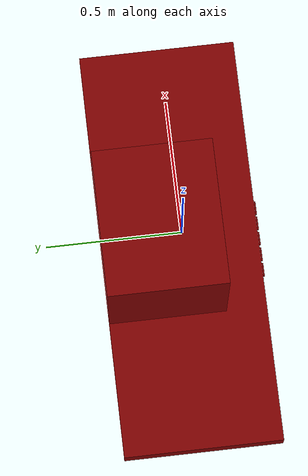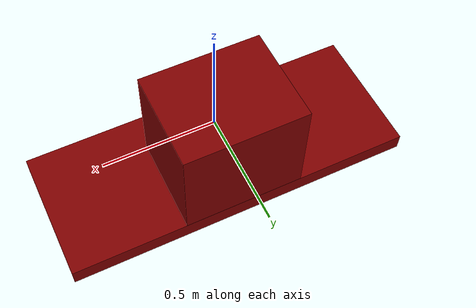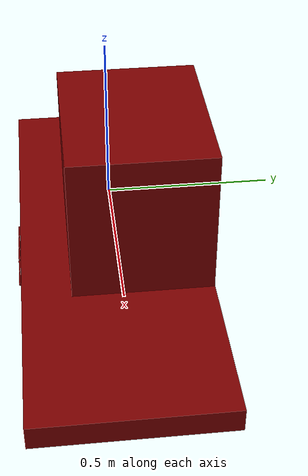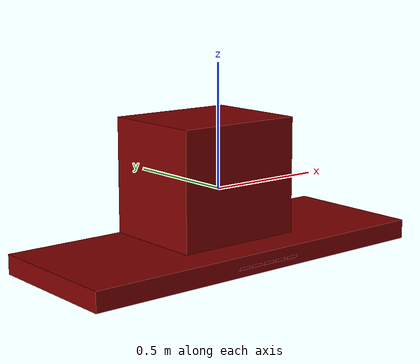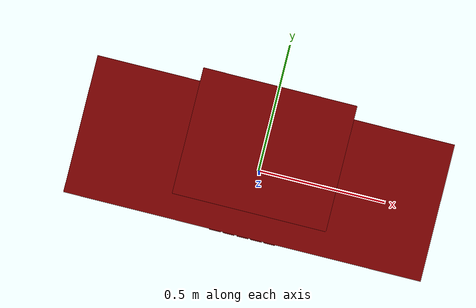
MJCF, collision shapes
<?xml version='1.0' encoding='UTF-8'?>
<mujoco model="model">
  <compiler angle="radian"/>
  <asset>
    <mesh file="visuals/Body001.obj" name="Body001_vis"/>
    <mesh file="visuals/Button001.obj" name="Button001_vis"/>
    <mesh file="visuals/Button002.obj" name="Button002_vis"/>
    <mesh file="visuals/Button003.obj" name="Button003_vis"/>
    <mesh file="visuals/Button004.obj" name="Button004_vis"/>
    <mesh file="visuals/Button005.obj" name="Button005_vis"/>
    <texture file="visuals/T_BC001.png" name="Body001_material" type="2d"/>
    <material name="Body001_material" rgba="1 1 1 1.0" texture="Body001_material" shininess="3" specular="3"/>
    <texture file="visuals/T_BC001.png" name="Button001_material" type="2d"/>
    <material name="Button001_material" rgba="1 1 1 1.0" texture="Button001_material" shininess="4" specular="4"/>
    <texture file="visuals/T_BC001.png" name="Button002_material" type="2d"/>
    <material name="Button002_material" rgba="1 1 1 1.0" texture="Button002_material" shininess="4" specular="4"/>
    <texture file="visuals/T_BC001.png" name="Button003_material" type="2d"/>
    <material name="Button003_material" rgba="1 1 1 1.0" texture="Button003_material" shininess="4" specular="4"/>
    <texture file="visuals/T_BC001.png" name="Button004_material" type="2d"/>
    <material name="Button004_material" rgba="1 1 1 1.0" texture="Button004_material" shininess="4" specular="4"/>
    <texture file="visuals/T_BC001.png" name="Button005_material" type="2d"/>
    <material name="Button005_material" rgba="1 1 1 1.0" texture="Button005_material" shininess="4" specular="4"/>
  </asset>
  <default>
    <default class="visual">
      <geom conaffinity="0" contype="0" group="1" type="mesh"/>
    </default>
    <default class="collision">
      <geom group="0" rgba="0.5 0 0 0.5"/>
    </default>
    <default class="spawn">
      <geom group="0" rgba="1 1 1 0.5" contype="0" conaffinity="0"/>
      <site group="0" rgba="1 1 1 0.5"/>
    </default>
    <default class="region">
      <geom group="1" conaffinity="0" contype="0" rgba="0 1 0 0"/>
    </default>
  </default>
  <worldbody>
    <body>
      <body name="object">
        <geom mesh="Body001_vis" type="mesh" solimp="0.998 0.998 0.001" solref="0.001 1" density="100" friction="0.95 0.3 0.1" class="visual" material="Body001_material"/>
        <geom class="collision" type="box" pos="-0.0008246898651123047 0.00509074330329895 -0.23437806963920593" size="0.7737935781478882 0.2960818409919739 0.039316415786743164" quat="1.0 0.0 0.0 0.0"/>
        <geom class="collision" type="box" pos="-0.00033676251769065857 0.0807870626449585 0.039567768573760986" size="0.2685760259628296 0.21944186091423035 0.23823563754558563" quat="1.0 0.0 0.0 0.0"/>
        <body name="Button001">
          <joint axis="0.0 1.0 0.0" pos="-0.11893388628959656 -0.2947140336036682 -0.2374347448348999" limited="true" name="Button001_joint" range="0.0 0.005" type="slide" damping="1" frictionloss="1" armature=".01" stiffness="0.05"/>
          <geom mesh="Button001_vis" type="mesh" solimp="0.998 0.998 0.001" solref="0.001 1" density="100" friction="0.95 0.3 0.1" class="visual" material="Button001_material"/>
          <geom class="collision" type="box" pos="-0.11884336918592453 -0.2969692349433899 -0.2372094690799713" size="0.02474355325102806 0.0025535528548061848 0.005630012135952711" quat="1.0 0.0 0.0 0.0"/>
        </body>
        <body name="Button002">
          <joint axis="0.0 1.0 0.0" pos="-0.059161536395549774 -0.2947140038013458 -0.2374347448348999" limited="true" name="Button002_joint" range="0.0 0.005" type="slide" damping="1" frictionloss="1" armature=".01" stiffness="0.05"/>
          <geom mesh="Button002_vis" type="mesh" solimp="0.998 0.998 0.001" solref="0.001 1" density="100" friction="0.95 0.3 0.1" class="visual" material="Button002_material"/>
          <geom class="collision" type="box" pos="-0.0593072846531868 -0.2969692349433899 -0.2372094690799713" size="0.02474355325102806 0.0025535528548061848 0.005630012135952711" quat="1.0 0.0 0.0 0.0"/>
        </body>
        <body name="Button003">
          <joint axis="0.0 1.0 0.0" pos="0.002274366095662117 -0.2947140038013458 -0.2374347448348999" limited="true" name="Button003_joint" range="0.0 0.005" type="slide" damping="1" frictionloss="1" armature=".01" stiffness="0.05"/>
          <geom mesh="Button003_vis" type="mesh" solimp="0.998 0.998 0.001" solref="0.001 1" density="100" friction="0.95 0.3 0.1" class="visual" material="Button003_material"/>
          <geom class="collision" type="box" pos="0.0021076109260320663 -0.2969692349433899 -0.2372094690799713" size="0.02474355325102806 0.0025535528548061848 0.005630012135952711" quat="1.0 0.0 0.0 0.0"/>
        </body>
        <body name="Button004">
          <joint axis="0.0 1.0 0.0" pos="0.06204672530293465 -0.29471397399902344 -0.2374347448348999" limited="true" name="Button004_joint" range="0.0 0.005" type="slide" damping="1" frictionloss="1" armature=".01" stiffness="0.05"/>
          <geom mesh="Button004_vis" type="mesh" solimp="0.998 0.998 0.001" solref="0.001 1" density="100" friction="0.95 0.3 0.1" class="visual" material="Button004_material"/>
          <geom class="collision" type="box" pos="0.06155047565698624 -0.2969692349433899 -0.2372094690799713" size="0.02474355325102806 0.0025535528548061848 0.005630012135952711" quat="1.0 0.0 0.0 0.0"/>
        </body>
        <body name="Button005">
          <joint axis="0.0 1.0 0.0" pos="0.12106642127037048 -0.29471397399902344 -0.2374347448348999" limited="true" name="Button005_joint" range="0.0 0.005" type="slide" damping="1" frictionloss="1" armature=".01" stiffness="0.05"/>
          <geom mesh="Button005_vis" type="mesh" solimp="0.998 0.998 0.001" solref="0.001 1" density="100" friction="0.95 0.3 0.1" class="visual" material="Button005_material"/>
          <geom class="collision" type="box" pos="0.12095808237791061 -0.2969692349433899 -0.2372094690799713" size="0.02474355325102806 0.0025535528548061848 0.005630012135952711" quat="1.0 0.0 0.0 0.0"/>
        </body>
        <geom class="region" name="reg_main" type="box" pos="0.0 0.0 0.0" size="0.7692370414733887 0.29933759570121765 0.27477023005485535"/>
      </body>
    </body>
  </worldbody>
  <actuator>
    <motor name="Button001_joint_actuator" joint="Button001_joint" gear="0.5"/>
    <motor name="Button002_joint_actuator" joint="Button002_joint" gear="0.5"/>
    <motor name="Button003_joint_actuator" joint="Button003_joint" gear="0.5"/>
    <motor name="Button004_joint_actuator" joint="Button004_joint" gear="0.5"/>
    <motor name="Button005_joint_actuator" joint="Button005_joint" gear="0.5"/>
  </actuator>
</mujoco>
